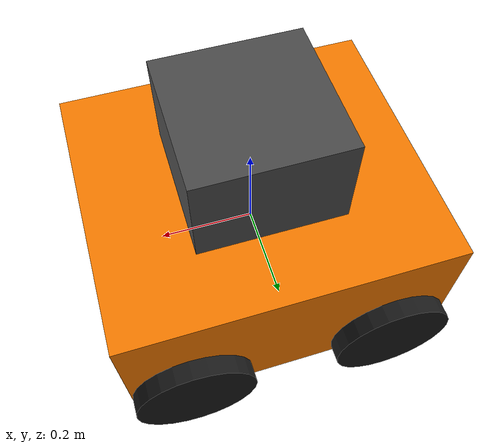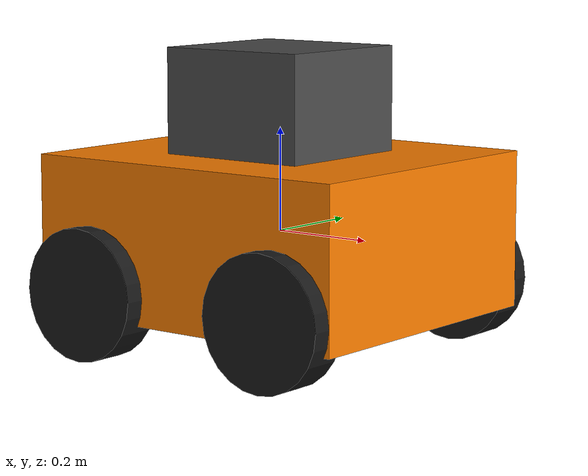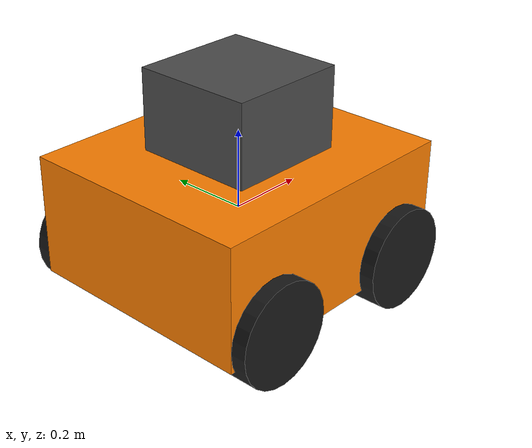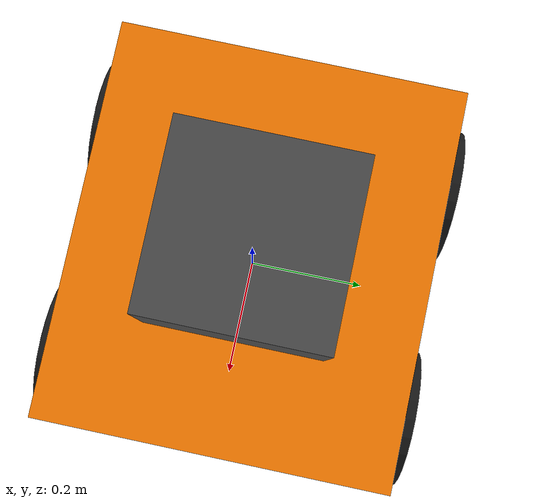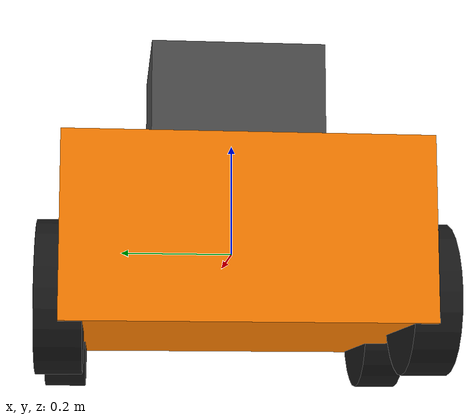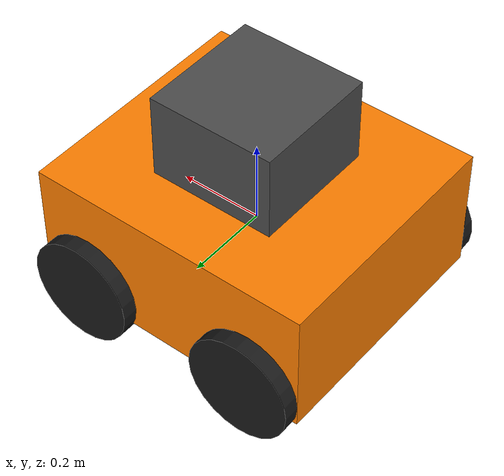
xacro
<?xml version="1.0"?>
<robot name="energia_rover" xmlns:xacro="http://www.ros.org/wiki/xacro">

  <!-- ==================== Properties/Constants ==================== -->

  <!-- Chassis dimensions (converted to meters) -->
  <xacro:property name="chassis_length" value="0.6858"/> <!-- 27 inches -->
  <xacro:property name="chassis_width" value="0.60325"/> <!-- 23.75 inches -->
  <xacro:property name="chassis_height" value="0.3048"/> <!-- 12 inches -->
  <xacro:property name="chassis_mass" value="90.7"/> <!-- 200 lbs total rover weight -->

  <!-- Electronics box dimensions (prototype box on top of chassis) -->
  <xacro:property name="ebox_length" value="0.3048"/> <!-- 12 inches -->
  <xacro:property name="ebox_width" value="0.3048"/> <!-- 12 inches -->
  <xacro:property name="ebox_height" value="0.2032"/> <!-- 8 inches -->
  <xacro:property name="ebox_mass" value="5.0"/> <!-- Estimated 11 lbs for electronics -->

  <!-- Center of mass offset: 4 inches above bottom edge of chassis -->
  <!-- Bottom edge is at -chassis_height/2, so CoM is at -chassis_height/2 + 0.1016 -->
  <xacro:property name="com_z_offset" value="${-chassis_height/2 + 0.1016}"/> <!-- 4 inches from bottom -->

  <!-- Wheel dimensions -->
  <xacro:property name="wheel_radius" value="0.127"/> <!-- 10 inches diameter = 5 inch radius -->
  <xacro:property name="wheel_width" value="0.0762"/> <!-- 3 inches -->
  <xacro:property name="wheel_mass" value="4.5"/> <!-- ~10 lbs per wheel (wheelchair motor + wheel assembly) -->

  <!-- Wheel positioning -->
  <xacro:property name="wheelbase" value="0.4318"/> <!-- 17 inches between front and rear wheels -->
  <xacro:property name="track_width" value="0.60325"/> <!-- 23.75 inches (flush with chassis) -->
  <xacro:property name="ground_clearance" value="0.0762"/> <!-- 3 inches -->

  <!-- Calculated positions -->
  <!-- Rear wheels: rear edge of tire tangent to back edge of chassis -->
  <!-- Wheel center is one radius forward from back edge -->
  <xacro:property name="rear_wheel_x_offset" value="${-chassis_length/2 + wheel_radius}"/> <!-- Rear of tire at back edge -->
  <xacro:property name="front_wheel_x_offset" value="${-chassis_length/2 + wheel_radius + wheelbase}"/> <!-- 17" forward from rear wheel center -->
  <xacro:property name="wheel_y_offset" value="${track_width/2}"/> <!-- Left/right offset from center -->
  <xacro:property name="wheel_z_offset" value="${-chassis_height/2 + wheel_radius - ground_clearance}"/>

  <!-- Colors -->
  <material name="black">
    <color rgba="0.1 0.1 0.1 1"/>
  </material>

  <material name="dark_gray">
    <color rgba="0.3 0.3 0.3 1"/>
  </material>

  <material name="orange">
    <color rgba="1.0 0.5 0.0 1"/>
  </material>

  <material name="blue">
    <color rgba="0.2 0.4 0.8 1"/>
  </material>

  <!-- ==================== Macros ==================== -->

  <!-- Wheel macro -->
  <xacro:macro name="wheel" params="prefix side x_offset y_reflect">
    <link name="${prefix}_${side}_wheel">
      <visual>
        <origin xyz="0 0 0" rpy="${pi/2} 0 0"/>
        <geometry>
          <cylinder radius="${wheel_radius}" length="${wheel_width}"/>
        </geometry>
        <material name="black"/>
      </visual>

      <collision>
        <origin xyz="0 0 0" rpy="${pi/2} 0 0"/>
        <geometry>
          <cylinder radius="${wheel_radius}" length="${wheel_width}"/>
        </geometry>
      </collision>

      <inertial>
        <origin xyz="0 0 0" rpy="${pi/2} 0 0"/>
        <mass value="${wheel_mass}"/>
        <inertia
          ixx="${wheel_mass * (3 * wheel_radius * wheel_radius + wheel_width * wheel_width) / 12}"
          ixy="0.0" ixz="0.0"
          iyy="${wheel_mass * (3 * wheel_radius * wheel_radius + wheel_width * wheel_width) / 12}"
          iyz="0.0"
          izz="${wheel_mass * wheel_radius * wheel_radius / 2}"/>
      </inertial>
    </link>

    <joint name="${prefix}_${side}_wheel_joint" type="continuous">
      <parent link="base_link"/>
      <child link="${prefix}_${side}_wheel"/>
      <origin xyz="${x_offset} ${y_reflect * wheel_y_offset} ${wheel_z_offset}"
              rpy="0 0 0"/>
      <axis xyz="0 1 0"/>
      <dynamics damping="5.0" friction="1.0"/>
    </joint>
  </xacro:macro>

  <!-- ==================== Base Link (Chassis) ==================== -->

  <link name="base_link">
    <visual>
      <origin xyz="0 0 0" rpy="0 0 0"/>
      <geometry>
        <box size="${chassis_length} ${chassis_width} ${chassis_height}"/>
      </geometry>
      <material name="orange"/>
    </visual>

    <collision>
      <origin xyz="0 0 0" rpy="0 0 0"/>
      <geometry>
        <box size="${chassis_length} ${chassis_width} ${chassis_height}"/>
      </geometry>
    </collision>

    <inertial>
      <!-- Center of mass: 4 inches above bottom edge (centered in x,y) -->
      <origin xyz="0 0 ${com_z_offset}" rpy="0 0 0"/>
      <mass value="${chassis_mass}"/>
      <inertia
        ixx="${chassis_mass * (chassis_width * chassis_width + chassis_height * chassis_height) / 12}"
        ixy="0.0" ixz="0.0"
        iyy="${chassis_mass * (chassis_length * chassis_length + chassis_height * chassis_height) / 12}"
        iyz="0.0"
        izz="${chassis_mass * (chassis_length * chassis_length + chassis_width * chassis_width) / 12}"/>
    </inertial>
  </link>

  <!-- ==================== Wheels ==================== -->

  <!-- Front Left Wheel -->
  <xacro:wheel prefix="front" side="left" x_offset="${front_wheel_x_offset}" y_reflect="1"/>

  <!-- Front Right Wheel -->
  <xacro:wheel prefix="front" side="right" x_offset="${front_wheel_x_offset}" y_reflect="-1"/>

  <!-- Rear Left Wheel (flush with back edge) -->
  <xacro:wheel prefix="rear" side="left" x_offset="${rear_wheel_x_offset}" y_reflect="1"/>

  <!-- Rear Right Wheel (flush with back edge) -->
  <xacro:wheel prefix="rear" side="right" x_offset="${rear_wheel_x_offset}" y_reflect="-1"/>

  <!-- ==================== Electronics Box ==================== -->

  <!-- Prototype electronics box (centered on top of chassis) -->
  <!-- Contains Jetson, Cube Orange, ESC controllers, power distribution, etc. -->
  <link name="electronics_box">
    <visual>
      <origin xyz="0 0 0" rpy="0 0 0"/>
      <geometry>
        <box size="${ebox_length} ${ebox_width} ${ebox_height}"/>
      </geometry>
      <material name="dark_gray"/>
    </visual>

    <collision>
      <origin xyz="0 0 0" rpy="0 0 0"/>
      <geometry>
        <box size="${ebox_length} ${ebox_width} ${ebox_height}"/>
      </geometry>
    </collision>

    <inertial>
      <origin xyz="0 0 0" rpy="0 0 0"/>
      <mass value="${ebox_mass}"/>
      <inertia
        ixx="${ebox_mass * (ebox_width * ebox_width + ebox_height * ebox_height) / 12}"
        ixy="0.0" ixz="0.0"
        iyy="${ebox_mass * (ebox_length * ebox_length + ebox_height * ebox_height) / 12}"
        iyz="0.0"
        izz="${ebox_mass * (ebox_length * ebox_length + ebox_width * ebox_width) / 12}"/>
    </inertial>
  </link>

  <joint name="electronics_box_joint" type="fixed">
    <parent link="base_link"/>
    <child link="electronics_box"/>
    <!-- Positioned on top of chassis: chassis top + half box height -->
    <origin xyz="0 0 ${chassis_height/2 + ebox_height/2}" rpy="0 0 0"/>
  </joint>

  <!-- ==================== Sensor Mounts (Placeholders) ==================== -->

  <!-- Cube Orange mount point (inside electronics box) -->
  <!-- Located 6 inches (0.1524m) below LiDAR, centered, IMU facing forward -->
  <!-- LiDAR is at top of ebox, so Cube Orange is at ebox_height/2 - 0.1524 -->
  <link name="cube_orange_link">
    <visual>
      <origin xyz="0 0 0" rpy="0 0 0"/>
      <geometry>
        <box size="0.08 0.08 0.04"/> <!-- Approximate Cube Orange size -->
      </geometry>
      <material name="blue"/>
    </visual>

    <inertial>
      <origin xyz="0 0 0" rpy="0 0 0"/>
      <mass value="0.038"/> <!-- 38 grams -->
      <inertia
        ixx="0.00001" ixy="0.0" ixz="0.0"
        iyy="0.00001" iyz="0.0"
        izz="0.00001"/>
    </inertial>
  </link>

  <joint name="cube_orange_joint" type="fixed">
    <parent link="electronics_box"/>
    <child link="cube_orange_link"/>
    <!-- 6 inches below top of ebox, centered, IMU arrow pointing forward (X+) -->
    <origin xyz="0 0 ${ebox_height/2 - 0.1524}" rpy="0 0 0"/>
  </joint>

  <!-- Jetson mount point (inside electronics box, lower section) -->
  <link name="jetson_link">
    <visual>
      <origin xyz="0 0 0" rpy="0 0 0"/>
      <geometry>
        <box size="0.10 0.08 0.03"/> <!-- Approximate Jetson size -->
      </geometry>
      <material name="blue"/>
    </visual>

    <inertial>
      <origin xyz="0 0 0" rpy="0 0 0"/>
      <mass value="0.200"/> <!-- ~200 grams -->
      <inertia
        ixx="0.00005" ixy="0.0" ixz="0.0"
        iyy="0.00005" iyz="0.0"
        izz="0.00005"/>
    </inertial>
  </link>

  <joint name="jetson_joint" type="fixed">
    <parent link="electronics_box"/>
    <child link="jetson_link"/>
    <!-- Lower section of electronics box -->
    <origin xyz="-0.05 0 ${-ebox_height/2 + 0.04}" rpy="0 0 0"/>
  </joint>

  <!-- ==================== Gazebo-specific configurations ==================== -->

  <gazebo reference="base_link">
    <material>Gazebo/Orange</material>
    <mu1>0.2</mu1>
    <mu2>0.2</mu2>
  </gazebo>

  <gazebo reference="electronics_box">
    <material>Gazebo/DarkGrey</material>
  </gazebo>

  <!-- Skid-steer friction model: high forward friction, low lateral friction -->
  <gazebo reference="front_left_wheel">
    <material>Gazebo/Black</material>
    <mu1>1.5</mu1>  <!-- Forward/backward friction (rolling) -->
    <mu2>0.5</mu2>  <!-- Lateral friction (sideways slide) - LOW for skid steer -->
    <kp>10000000.0</kp>
    <kd>1.0</kd>
    <min_depth>0.001</min_depth>
  </gazebo>

  <gazebo reference="front_right_wheel">
    <material>Gazebo/Black</material>
    <mu1>1.5</mu1>  <!-- Forward/backward friction (rolling) -->
    <mu2>0.5</mu2>  <!-- Lateral friction (sideways slide) - LOW for skid steer -->
    <kp>10000000.0</kp>
    <kd>1.0</kd>
    <min_depth>0.001</min_depth>
  </gazebo>

  <gazebo reference="rear_left_wheel">
    <material>Gazebo/Black</material>
    <mu1>1.5</mu1>  <!-- Forward/backward friction (rolling) -->
    <mu2>0.5</mu2>  <!-- Lateral friction (sideways slide) - LOW for skid steer -->
    <kp>10000000.0</kp>
    <kd>1.0</kd>
    <min_depth>0.001</min_depth>
  </gazebo>

  <gazebo reference="rear_right_wheel">
    <material>Gazebo/Black</material>
    <mu1>1.5</mu1>  <!-- Forward/backward friction (rolling) -->
    <mu2>0.5</mu2>  <!-- Lateral friction (sideways slide) - LOW for skid steer -->
    <kp>10000000.0</kp>
    <kd>1.0</kd>
    <min_depth>0.001</min_depth>
  </gazebo>

</robot>
